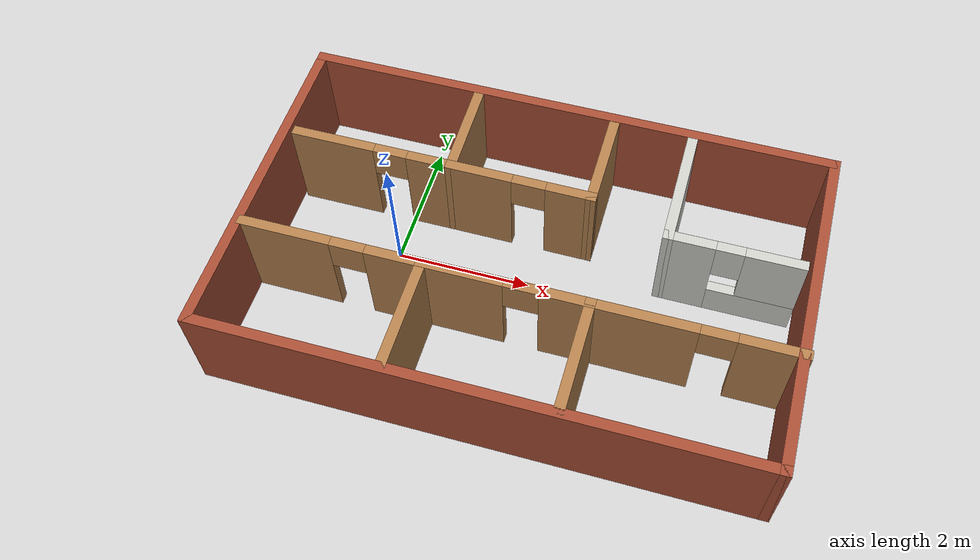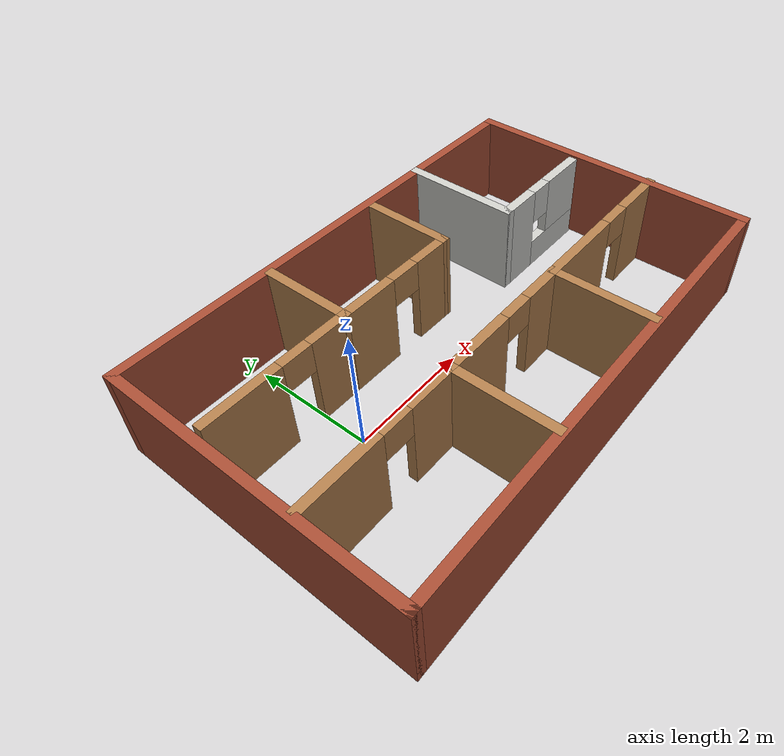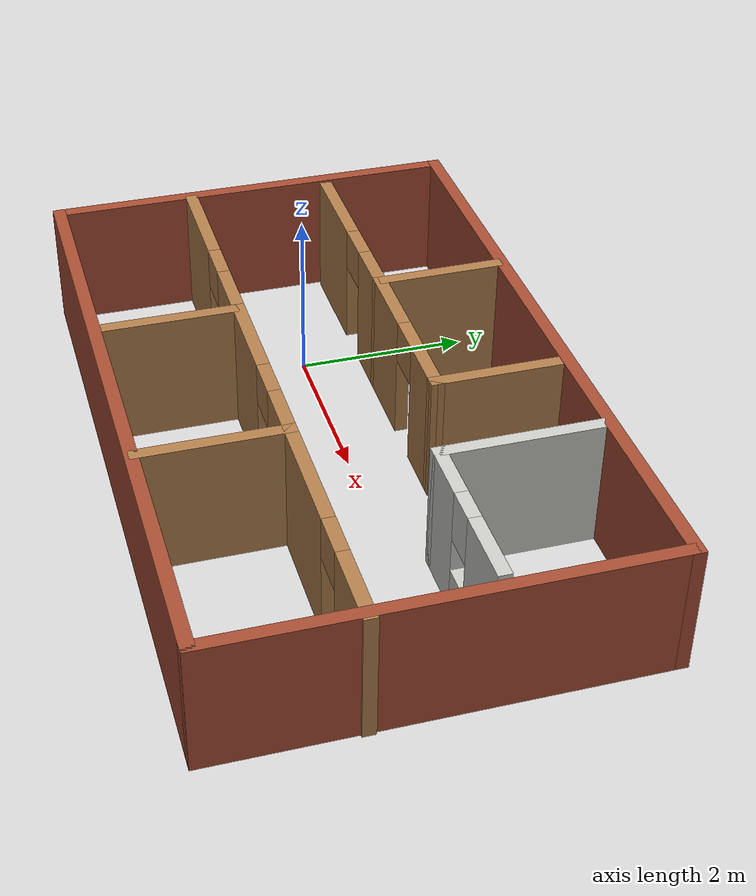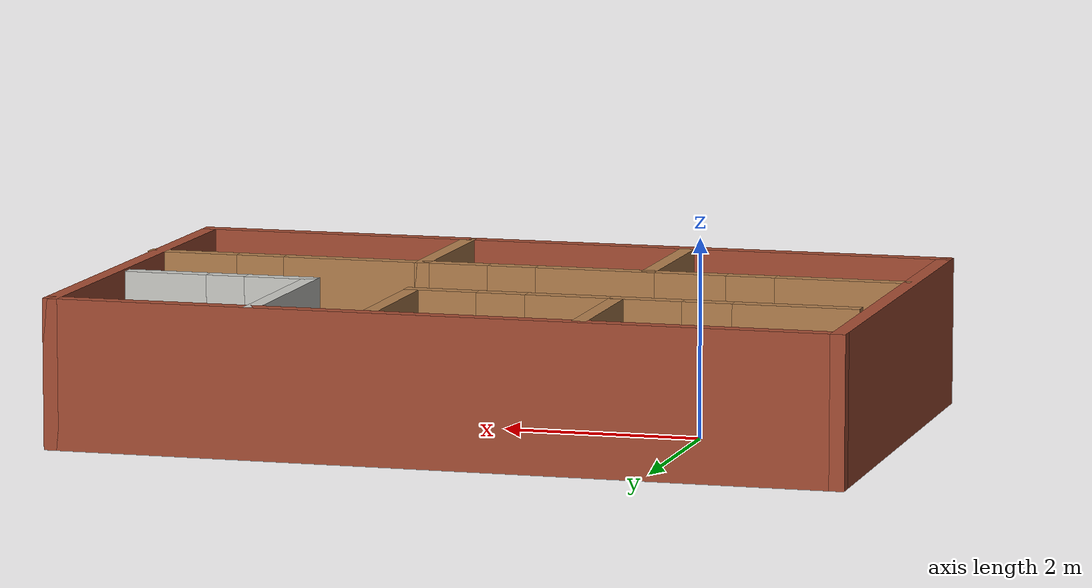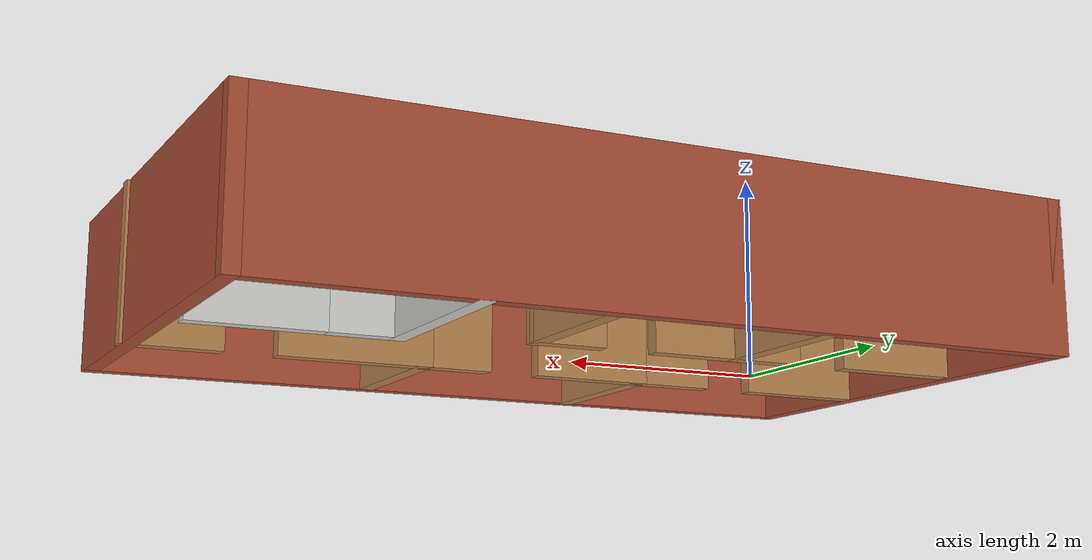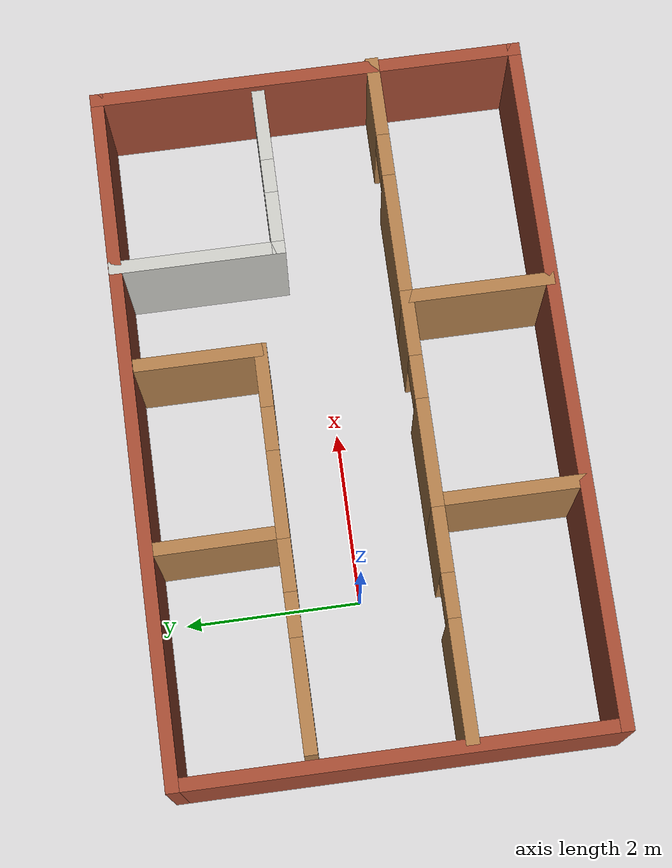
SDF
<?xml version='1.0'?>
<sdf version='1.7'>
  <model name='restaurant_map'>
    <pose>2.0295 -0.165 0 0 -0 0</pose>
    <link name='Wall_0'>
      <collision name='Wall_0_Collision'>
        <geometry>
          <box>
            <size>5 0.15 1.5</size>
          </box>
        </geometry>
        <pose>0 0 0.75 0 -0 0</pose>
      </collision>
      <visual name='Wall_0_Visual'>
        <pose>0 0 0.75 0 -0 0</pose>
        <geometry>
          <box>
            <size>5 0.15 1.5</size>
          </box>
        </geometry>
        <material>
          <script>
            <uri>file://media/materials/scripts/gazebo.material</uri>
            <name>Gazebo/Bricks</name>
          </script>
          <ambient>1 1 1 1</ambient>
        </material>
        <meta>
          <layer>0</layer>
        </meta>
      </visual>
      <pose>-3.9395 -0 0 0 -0 -1.5708</pose>
    </link>
    <link name='Wall_10'>
      <collision name='Wall_10_Collision'>
        <geometry>
          <box>
            <size>1.56038 0.15 1.5</size>
          </box>
        </geometry>
        <pose>0 0 0.75 0 -0 0</pose>
      </collision>
      <visual name='Wall_10_Visual'>
        <pose>0 0 0.75 0 -0 0</pose>
        <geometry>
          <box>
            <size>1.56038 0.15 1.5</size>
          </box>
        </geometry>
        <material>
          <script>
            <uri>file://media/materials/scripts/gazebo.material</uri>
            <name>Gazebo/Wood</name>
          </script>
          <ambient>1 1 1 1</ambient>
        </material>
        <meta>
          <layer>0</layer>
        </meta>
      </visual>
      <pose>-1.3955 1.637 0 0 -0 -1.5637</pose>
    </link>
    <link name='Wall_11'>
      <pose>-2.5655 0.932 0 0 -0 3.14159</pose>
      <visual name='Wall_11_Visual_0'>
        <pose>-0.881058 0 0.75 0 -0 0</pose>
        <geometry>
          <box>
            <size>0.737885 0.15 1.5</size>
          </box>
        </geometry>
        <material>
          <script>
            <uri>file://media/materials/scripts/gazebo.material</uri>
            <name>Gazebo/Wood</name>
          </script>
          <ambient>1 1 1 1</ambient>
        </material>
        <meta>
          <layer>0</layer>
        </meta>
      </visual>
      <collision name='Wall_11_Collision_0'>
        <geometry>
          <box>
            <size>0.737885 0.15 1.5</size>
          </box>
        </geometry>
        <pose>-0.881058 0 0.75 0 -0 0</pose>
      </collision>
      <visual name='Wall_11_Visual_1'>
        <pose>0.618942 0 0.75 0 -0 0</pose>
        <geometry>
          <box>
            <size>1.26212 0.15 1.5</size>
          </box>
        </geometry>
        <material>
          <script>
            <uri>file://media/materials/scripts/gazebo.material</uri>
            <name>Gazebo/Wood</name>
          </script>
          <ambient>1 1 1 1</ambient>
        </material>
        <meta>
          <layer>0</layer>
        </meta>
      </visual>
      <collision name='Wall_11_Collision_1'>
        <geometry>
          <box>
            <size>1.26212 0.15 1.5</size>
          </box>
        </geometry>
        <pose>0.618942 0 0.75 0 -0 0</pose>
      </collision>
      <visual name='Wall_11_Visual_2'>
        <pose>-0.262115 0 1.25 0 -0 0</pose>
        <geometry>
          <box>
            <size>0.5 0.15 0.5</size>
          </box>
        </geometry>
        <material>
          <script>
            <uri>file://media/materials/scripts/gazebo.material</uri>
            <name>Gazebo/Wood</name>
          </script>
          <ambient>1 1 1 1</ambient>
        </material>
        <meta>
          <layer>0</layer>
        </meta>
      </visual>
      <collision name='Wall_11_Collision_2'>
        <geometry>
          <box>
            <size>0.5 0.15 0.5</size>
          </box>
        </geometry>
        <pose>-0.262115 0 1.25 0 -0 0</pose>
      </collision>
    </link>
    <link name='Wall_14'>
      <collision name='Wall_14_Collision'>
        <geometry>
          <box>
            <size>2 0.15 1.5</size>
          </box>
        </geometry>
        <pose>0 0 0.75 0 -0 0</pose>
      </collision>
      <visual name='Wall_14_Visual'>
        <pose>0 0 0.75 0 -0 0</pose>
        <geometry>
          <box>
            <size>2 0.15 1.5</size>
          </box>
        </geometry>
        <material>
          <script>
            <uri>file://media/materials/scripts/gazebo.material</uri>
            <name>Gazebo/CeilingTiled</name>
          </script>
          <ambient>1 1 1 1</ambient>
        </material>
        <meta>
          <layer>0</layer>
        </meta>
      </visual>
      <pose>1.8595 1.497 0 0 -0 -1.5708</pose>
    </link>
    <link name='Wall_15'>
      <pose>2.7845 0.572 0 0 -0 0</pose>
      <visual name='Wall_15_Visual_0'>
        <pose>-0.6275 0 0.75 0 -0 0</pose>
        <geometry>
          <box>
            <size>0.745 0.15 1.5</size>
          </box>
        </geometry>
        <material>
          <script>
            <uri>file://media/materials/scripts/gazebo.material</uri>
            <name>Gazebo/CeilingTiled</name>
          </script>
          <ambient>1 1 1 1</ambient>
        </material>
        <meta>
          <layer>0</layer>
        </meta>
      </visual>
      <collision name='Wall_15_Collision_0'>
        <geometry>
          <box>
            <size>0.745 0.15 1.5</size>
          </box>
        </geometry>
        <pose>-0.6275 0 0.75 0 -0 0</pose>
      </collision>
      <visual name='Wall_15_Visual_1'>
        <pose>0.3725 0 0.25 0 -0 0</pose>
        <geometry>
          <box>
            <size>1.255 0.15 0.5</size>
          </box>
        </geometry>
        <material>
          <script>
            <uri>file://media/materials/scripts/gazebo.material</uri>
            <name>Gazebo/CeilingTiled</name>
          </script>
          <ambient>1 1 1 1</ambient>
        </material>
        <meta>
          <layer>0</layer>
        </meta>
      </visual>
      <collision name='Wall_15_Collision_1'>
        <geometry>
          <box>
            <size>1.255 0.15 0.5</size>
          </box>
        </geometry>
        <pose>0.3725 0 0.25 0 -0 0</pose>
      </collision>
      <visual name='Wall_15_Visual_2'>
        <pose>0.5725 0 1 0 -0 0</pose>
        <geometry>
          <box>
            <size>0.855 0.15 1</size>
          </box>
        </geometry>
        <material>
          <script>
            <uri>file://media/materials/scripts/gazebo.material</uri>
            <name>Gazebo/CeilingTiled</name>
          </script>
          <ambient>1 1 1 1</ambient>
        </material>
        <meta>
          <layer>0</layer>
        </meta>
      </visual>
      <collision name='Wall_15_Collision_2'>
        <geometry>
          <box>
            <size>0.855 0.15 1</size>
          </box>
        </geometry>
        <pose>0.5725 0 1 0 -0 0</pose>
      </collision>
      <visual name='Wall_15_Visual_3'>
        <pose>-0.055 0 1.2 0 -0 0</pose>
        <geometry>
          <box>
            <size>0.4 0.15 0.6</size>
          </box>
        </geometry>
        <material>
          <script>
            <uri>file://media/materials/scripts/gazebo.material</uri>
            <name>Gazebo/CeilingTiled</name>
          </script>
          <ambient>1 1 1 1</ambient>
        </material>
        <meta>
          <layer>0</layer>
        </meta>
      </visual>
      <collision name='Wall_15_Collision_3'>
        <geometry>
          <box>
            <size>0.4 0.15 0.6</size>
          </box>
        </geometry>
        <pose>-0.055 0 1.2 0 -0 0</pose>
      </collision>
    </link>
    <link name='Wall_17'>
      <pose>-0.3505 0.927 0 0 -0 -0.004808</pose>
      <visual name='Wall_17_Visual_0'>
        <pose>-0.61813 0 0.75 0 -0 0</pose>
        <geometry>
          <box>
            <size>0.993787 0.15 1.5</size>
          </box>
        </geometry>
        <material>
          <script>
            <uri>file://media/materials/scripts/gazebo.material</uri>
            <name>Gazebo/Wood</name>
          </script>
          <ambient>1 1 1 1</ambient>
        </material>
        <meta>
          <layer>0</layer>
        </meta>
      </visual>
      <collision name='Wall_17_Collision_0'>
        <geometry>
          <box>
            <size>0.993787 0.15 1.5</size>
          </box>
        </geometry>
        <pose>-0.61813 0 0.75 0 -0 0</pose>
      </collision>
      <visual name='Wall_17_Visual_1'>
        <pose>0.746894 0 0.75 0 -0 0</pose>
        <geometry>
          <box>
            <size>0.73626 0.15 1.5</size>
          </box>
        </geometry>
        <material>
          <script>
            <uri>file://media/materials/scripts/gazebo.material</uri>
            <name>Gazebo/Wood</name>
          </script>
          <ambient>1 1 1 1</ambient>
        </material>
        <meta>
          <layer>0</layer>
        </meta>
      </visual>
      <collision name='Wall_17_Collision_1'>
        <geometry>
          <box>
            <size>0.73626 0.15 1.5</size>
          </box>
        </geometry>
        <pose>0.746894 0 0.75 0 -0 0</pose>
      </collision>
      <visual name='Wall_17_Visual_2'>
        <pose>0.128763 0 1.25 0 -0 0</pose>
        <geometry>
          <box>
            <size>0.5 0.15 0.5</size>
          </box>
        </geometry>
        <material>
          <script>
            <uri>file://media/materials/scripts/gazebo.material</uri>
            <name>Gazebo/Wood</name>
          </script>
          <ambient>1 1 1 1</ambient>
        </material>
        <meta>
          <layer>0</layer>
        </meta>
      </visual>
      <collision name='Wall_17_Collision_2'>
        <geometry>
          <box>
            <size>0.5 0.15 0.5</size>
          </box>
        </geometry>
        <pose>0.128763 0 1.25 0 -0 0</pose>
      </collision>
    </link>
    <link name='Wall_19'>
      <collision name='Wall_19_Collision'>
        <geometry>
          <box>
            <size>1.5 0.15 1.5</size>
          </box>
        </geometry>
        <pose>0 0 0.75 0 -0 0</pose>
      </collision>
      <visual name='Wall_19_Visual'>
        <pose>0 0 0.75 0 -0 0</pose>
        <geometry>
          <box>
            <size>1.5 0.15 1.5</size>
          </box>
        </geometry>
        <material>
          <script>
            <uri>file://media/materials/scripts/gazebo.material</uri>
            <name>Gazebo/Wood</name>
          </script>
          <ambient>1 1 1 1</ambient>
        </material>
        <meta>
          <layer>0</layer>
        </meta>
      </visual>
      <pose>0.6895 1.597 0 0 -0 1.5708</pose>
    </link>
    <link name='Wall_21'>
      <pose>2.5145 -0.778 0 0 -0 3.14159</pose>
      <visual name='Wall_21_Visual_0'>
        <pose>-1.0225 0 0.75 0 -0 0</pose>
        <geometry>
          <box>
            <size>0.955 0.15 1.5</size>
          </box>
        </geometry>
        <material>
          <script>
            <uri>file://media/materials/scripts/gazebo.material</uri>
            <name>Gazebo/Wood</name>
          </script>
          <ambient>1 1 1 1</ambient>
        </material>
        <meta>
          <layer>0</layer>
        </meta>
      </visual>
      <collision name='Wall_21_Collision_0'>
        <geometry>
          <box>
            <size>0.955 0.15 1.5</size>
          </box>
        </geometry>
        <pose>-1.0225 0 0.75 0 -0 0</pose>
      </collision>
      <visual name='Wall_21_Visual_1'>
        <pose>0.7275 0 0.75 0 -0 0</pose>
        <geometry>
          <box>
            <size>1.545 0.15 1.5</size>
          </box>
        </geometry>
        <material>
          <script>
            <uri>file://media/materials/scripts/gazebo.material</uri>
            <name>Gazebo/Wood</name>
          </script>
          <ambient>1 1 1 1</ambient>
        </material>
        <meta>
          <layer>0</layer>
        </meta>
      </visual>
      <collision name='Wall_21_Collision_1'>
        <geometry>
          <box>
            <size>1.545 0.15 1.5</size>
          </box>
        </geometry>
        <pose>0.7275 0 0.75 0 -0 0</pose>
      </collision>
      <visual name='Wall_21_Visual_2'>
        <pose>-0.295 0 1.25 0 -0 0</pose>
        <geometry>
          <box>
            <size>0.5 0.15 0.5</size>
          </box>
        </geometry>
        <material>
          <script>
            <uri>file://media/materials/scripts/gazebo.material</uri>
            <name>Gazebo/Wood</name>
          </script>
          <ambient>1 1 1 1</ambient>
        </material>
        <meta>
          <layer>0</layer>
        </meta>
      </visual>
      <collision name='Wall_21_Collision_2'>
        <geometry>
          <box>
            <size>0.5 0.15 0.5</size>
          </box>
        </geometry>
        <pose>-0.295 0 1.25 0 -0 0</pose>
      </collision>
    </link>
    <link name='Wall_22'>
      <collision name='Wall_22_Collision'>
        <geometry>
          <box>
            <size>1.75 0.15 1.5</size>
          </box>
        </geometry>
        <pose>0 0 0.75 0 -0 0</pose>
      </collision>
      <visual name='Wall_22_Visual'>
        <pose>0 0 0.75 0 -0 0</pose>
        <geometry>
          <box>
            <size>1.75 0.15 1.5</size>
          </box>
        </geometry>
        <material>
          <script>
            <uri>file://media/materials/scripts/gazebo.material</uri>
            <name>Gazebo/Wood</name>
          </script>
          <ambient>1 1 1 1</ambient>
        </material>
        <meta>
          <layer>0</layer>
        </meta>
      </visual>
      <pose>1.0895 -1.578 0 0 -0 -1.5708</pose>
    </link>
    <link name='Wall_26'>
      <pose>-0.0855 -0.778 0 0 -0 3.14159</pose>
      <visual name='Wall_26_Visual_0'>
        <pose>-0.8675 0 0.75 0 -0 0</pose>
        <geometry>
          <box>
            <size>0.765 0.15 1.5</size>
          </box>
        </geometry>
        <material>
          <script>
            <uri>file://media/materials/scripts/gazebo.material</uri>
            <name>Gazebo/Wood</name>
          </script>
          <ambient>1 1 1 1</ambient>
        </material>
        <meta>
          <layer>0</layer>
        </meta>
      </visual>
      <collision name='Wall_26_Collision_0'>
        <geometry>
          <box>
            <size>0.765 0.15 1.5</size>
          </box>
        </geometry>
        <pose>-0.8675 0 0.75 0 -0 0</pose>
      </collision>
      <visual name='Wall_26_Visual_1'>
        <pose>0.6325 0 0.75 0 -0 0</pose>
        <geometry>
          <box>
            <size>1.235 0.15 1.5</size>
          </box>
        </geometry>
        <material>
          <script>
            <uri>file://media/materials/scripts/gazebo.material</uri>
            <name>Gazebo/Wood</name>
          </script>
          <ambient>1 1 1 1</ambient>
        </material>
        <meta>
          <layer>0</layer>
        </meta>
      </visual>
      <collision name='Wall_26_Collision_1'>
        <geometry>
          <box>
            <size>1.235 0.15 1.5</size>
          </box>
        </geometry>
        <pose>0.6325 0 0.75 0 -0 0</pose>
      </collision>
      <visual name='Wall_26_Visual_2'>
        <pose>-0.235 0 1.25 0 -0 0</pose>
        <geometry>
          <box>
            <size>0.5 0.15 0.5</size>
          </box>
        </geometry>
        <material>
          <script>
            <uri>file://media/materials/scripts/gazebo.material</uri>
            <name>Gazebo/Wood</name>
          </script>
          <ambient>1 1 1 1</ambient>
        </material>
        <meta>
          <layer>0</layer>
        </meta>
      </visual>
      <collision name='Wall_26_Collision_2'>
        <geometry>
          <box>
            <size>0.5 0.15 0.5</size>
          </box>
        </geometry>
        <pose>-0.235 0 1.25 0 -0 0</pose>
      </collision>
    </link>
    <link name='Wall_27'>
      <collision name='Wall_27_Collision'>
        <geometry>
          <box>
            <size>1.75 0.15 1.5</size>
          </box>
        </geometry>
        <pose>0 0 0.75 0 -0 0</pose>
      </collision>
      <visual name='Wall_27_Visual'>
        <pose>0 0 0.75 0 -0 0</pose>
        <geometry>
          <box>
            <size>1.75 0.15 1.5</size>
          </box>
        </geometry>
        <material>
          <script>
            <uri>file://media/materials/scripts/gazebo.material</uri>
            <name>Gazebo/Wood</name>
          </script>
          <ambient>1 1 1 1</ambient>
        </material>
        <meta>
          <layer>0</layer>
        </meta>
      </visual>
      <pose>-1.2605 -1.578 0 0 -0 -1.5708</pose>
    </link>
    <link name='Wall_30'>
      <pose>-2.5605 -0.778 0 0 -0 3.14159</pose>
      <visual name='Wall_30_Visual_0'>
        <pose>-0.9325 0 0.75 0 -0 0</pose>
        <geometry>
          <box>
            <size>0.885 0.15 1.5</size>
          </box>
        </geometry>
        <material>
          <script>
            <uri>file://media/materials/scripts/gazebo.material</uri>
            <name>Gazebo/Wood</name>
          </script>
          <ambient>1 1 1 1</ambient>
        </material>
        <meta>
          <layer>0</layer>
        </meta>
      </visual>
      <collision name='Wall_30_Collision_0'>
        <geometry>
          <box>
            <size>0.885 0.15 1.5</size>
          </box>
        </geometry>
        <pose>-0.9325 0 0.75 0 -0 0</pose>
      </collision>
      <visual name='Wall_30_Visual_1'>
        <pose>0.6925 0 0.75 0 -0 0</pose>
        <geometry>
          <box>
            <size>1.365 0.15 1.5</size>
          </box>
        </geometry>
        <material>
          <script>
            <uri>file://media/materials/scripts/gazebo.material</uri>
            <name>Gazebo/Wood</name>
          </script>
          <ambient>1 1 1 1</ambient>
        </material>
        <meta>
          <layer>0</layer>
        </meta>
      </visual>
      <collision name='Wall_30_Collision_1'>
        <geometry>
          <box>
            <size>1.365 0.15 1.5</size>
          </box>
        </geometry>
        <pose>0.6925 0 0.75 0 -0 0</pose>
      </collision>
      <visual name='Wall_30_Visual_2'>
        <pose>-0.24 0 1.25 0 -0 0</pose>
        <geometry>
          <box>
            <size>0.5 0.15 0.5</size>
          </box>
        </geometry>
        <material>
          <script>
            <uri>file://media/materials/scripts/gazebo.material</uri>
            <name>Gazebo/Wood</name>
          </script>
          <ambient>1 1 1 1</ambient>
        </material>
        <meta>
          <layer>0</layer>
        </meta>
      </visual>
      <collision name='Wall_30_Collision_2'>
        <geometry>
          <box>
            <size>0.5 0.15 0.5</size>
          </box>
        </geometry>
        <pose>-0.24 0 1.25 0 -0 0</pose>
      </collision>
    </link>
    <link name='Wall_5'>
      <collision name='Wall_5_Collision'>
        <geometry>
          <box>
            <size>8 0.15 1.5</size>
          </box>
        </geometry>
        <pose>0 0 0.75 0 -0 0</pose>
      </collision>
      <visual name='Wall_5_Visual'>
        <pose>0 0 0.75 0 -0 0</pose>
        <geometry>
          <box>
            <size>8 0.15 1.5</size>
          </box>
        </geometry>
        <material>
          <script>
            <uri>file://media/materials/scripts/gazebo.material</uri>
            <name>Gazebo/Bricks</name>
          </script>
          <ambient>1 1 1 1</ambient>
        </material>
        <meta>
          <layer>0</layer>
        </meta>
      </visual>
      <pose>-0.0145 -2.425 0 0 -0 0</pose>
    </link>
    <link name='Wall_6'>
      <collision name='Wall_6_Collision'>
        <geometry>
          <box>
            <size>5 0.15 1.5</size>
          </box>
        </geometry>
        <pose>0 0 0.75 0 -0 0</pose>
      </collision>
      <visual name='Wall_6_Visual'>
        <pose>0 0 0.75 0 -0 0</pose>
        <geometry>
          <box>
            <size>5 0.15 1.5</size>
          </box>
        </geometry>
        <material>
          <script>
            <uri>file://media/materials/scripts/gazebo.material</uri>
            <name>Gazebo/Bricks</name>
          </script>
          <ambient>1 1 1 1</ambient>
        </material>
        <meta>
          <layer>0</layer>
        </meta>
      </visual>
      <pose>3.9105 -0 0 0 -0 1.5708</pose>
    </link>
    <link name='Wall_8'>
      <collision name='Wall_8_Collision'>
        <geometry>
          <box>
            <size>8 0.15 1.5</size>
          </box>
        </geometry>
        <pose>0 0 0.75 0 -0 0</pose>
      </collision>
      <visual name='Wall_8_Visual'>
        <pose>0 0 0.75 0 -0 0</pose>
        <geometry>
          <box>
            <size>8 0.15 1.5</size>
          </box>
        </geometry>
        <material>
          <script>
            <uri>file://media/materials/scripts/gazebo.material</uri>
            <name>Gazebo/Bricks</name>
          </script>
          <ambient>1 1 1 1</ambient>
        </material>
        <meta>
          <layer>0</layer>
        </meta>
      </visual>
      <pose>-0.0145 2.425 0 0 -0 0</pose>
    </link>
    <static>1</static>
  </model>
</sdf>
